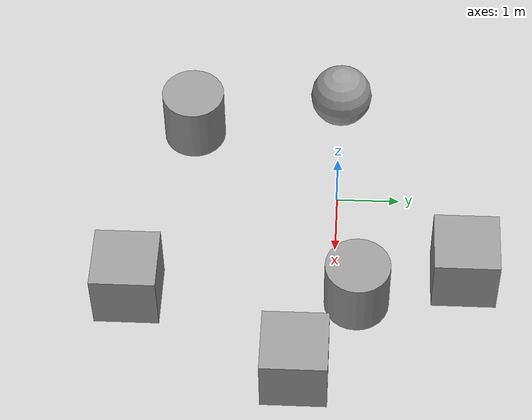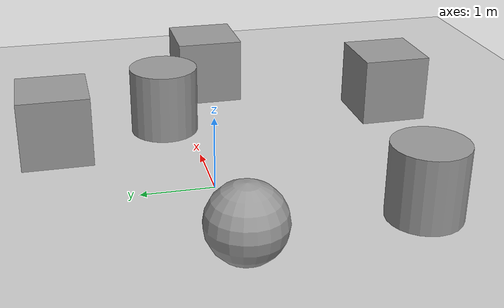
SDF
<sdf version="1.6">
 <world name="default">
  <include><uri>model://ground_plane</uri></include>
  <include><uri>model://sun</uri></include>
  <model name="unit_box">
   <pose>1.5 2 0.5 0 -0 0</pose>
   <link name="link">
    <inertial>
     <mass>1</mass>
     <inertia>
      <ixx>0.166667</ixx>
      <ixy>0</ixy>
      <ixz>0</ixz>
      <iyy>0.166667</iyy>
      <iyz>0</iyz>
      <izz>0.166667</izz>
     </inertia>
    </inertial>
    <collision name="collision"><geometry><box><size>1 1 1</size></box></geometry></collision>
    <visual name="visual">
     <geometry><box><size>1 1 1</size></box></geometry>
     <material>
      <script><name>Gazebo/Grey</name><uri>file://media/materials/scripts/gazebo.material</uri></script>
     </material>
    </visual>
   </link>
  </model>
  <model name="unit_sphere">
   <pose>-1.8 0.020595 0.5 0 -0 0</pose>
   <link name="link">
    <inertial>
     <mass>1</mass>
     <inertia><ixx>0.1</ixx><ixy>0</ixy><ixz>0</ixz><iyy>0.1</iyy><iyz>0</iyz><izz>0.1</izz></inertia>
    </inertial>
    <collision name="collision"><geometry><sphere><radius>0.5</radius></sphere></geometry></collision>
    <visual name="visual">
     <geometry><sphere><radius>0.5</radius></sphere></geometry>
     <material>
      <script><name>Gazebo/Grey</name><uri>file://media/materials/scripts/gazebo.material</uri></script>
     </material>
    </visual>
   </link>
  </model>
  <model name="unit_cylinder">
   <pose>2.00717 0.353634 0.5 0 -0 0</pose>
   <link name="link">
    <inertial>
     <mass>1</mass>
     <inertia><ixx>0.145833</ixx><ixy>0</ixy><ixz>0</ixz><iyy>0.145833</iyy><iyz>0</iyz><izz>0.125</izz></inertia>
    </inertial>
    <collision name="collision">
     <geometry><cylinder><radius>0.5</radius><length>1</length></cylinder></geometry>
    </collision>
    <visual name="visual">
     <geometry><cylinder><radius>0.5</radius><length>1</length></cylinder></geometry>
     <material>
      <script><name>Gazebo/Grey</name><uri>file://media/materials/scripts/gazebo.material</uri></script>
     </material>
    </visual>
   </link>
  </model>
  <model name="unit_box_0">
   <pose>3.38395 -0.54554 0.5 0 -0 0</pose>
   <link name="link">
    <inertial>
     <mass>1</mass>
     <inertia>
      <ixx>0.166667</ixx>
      <ixy>0</ixy>
      <ixz>0</ixz>
      <iyy>0.166667</iyy>
      <iyz>0</iyz>
      <izz>0.166667</izz>
     </inertia>
    </inertial>
    <collision name="collision"><geometry><box><size>1 1 1</size></box></geometry></collision>
    <visual name="visual">
     <geometry><box><size>1 1 1</size></box></geometry>
     <material>
      <script><name>Gazebo/Grey</name><uri>file://media/materials/scripts/gazebo.material</uri></script>
     </material>
    </visual>
   </link>
  </model>
  <model name="unit_cylinder_0">
   <pose>-1.3107 -2.3802 0.5 0 -0 0</pose>
   <link name="link">
    <inertial>
     <mass>1</mass>
     <inertia><ixx>0.145833</ixx><ixy>0</ixy><ixz>0</ixz><iyy>0.145833</iyy><iyz>0</iyz><izz>0.125</izz></inertia>
    </inertial>
    <collision name="collision">
     <geometry><cylinder><radius>0.5</radius><length>1</length></cylinder></geometry>
    </collision>
    <visual name="visual">
     <geometry><cylinder><radius>0.5</radius><length>1</length></cylinder></geometry>
     <material>
      <script><name>Gazebo/Grey</name><uri>file://media/materials/scripts/gazebo.material</uri></script>
     </material>
    </visual>
   </link>
  </model>
  <model name="unit_box_1">
   <pose>2 -3.16019 0.5 0 -0 0</pose>
   <link name="link">
    <inertial>
     <mass>1</mass>
     <inertia>
      <ixx>0.166667</ixx>
      <ixy>0</ixy>
      <ixz>0</ixz>
      <iyy>0.166667</iyy>
      <iyz>0</iyz>
      <izz>0.166667</izz>
     </inertia>
    </inertial>
    <collision name="collision"><geometry><box><size>1 1 1</size></box></geometry></collision>
    <visual name="visual">
     <geometry><box><size>1 1 1</size></box></geometry>
     <material>
      <script><name>Gazebo/Grey</name><uri>file://media/materials/scripts/gazebo.material</uri></script>
     </material>
    </visual>
   </link>
  </model>
 </world>
</sdf>
